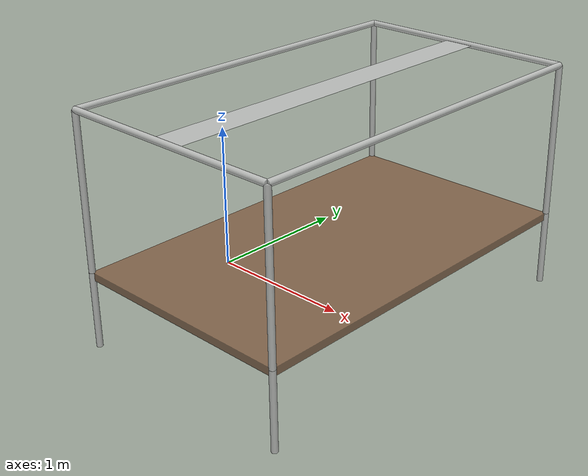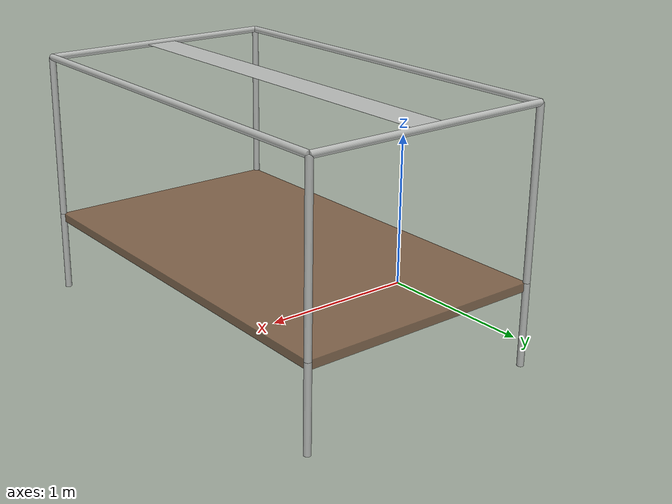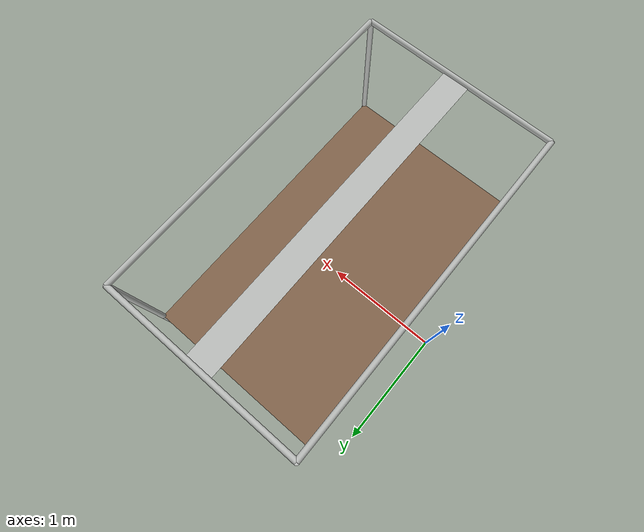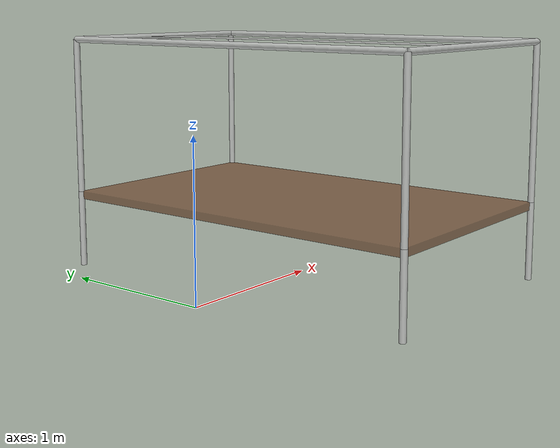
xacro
<?xml version="1.0"?>
<!-- xacro for the cage defining the workspace of the RePair platform -->

<robot name = "repair_cage" xmlns:xacro="http://ros.org/wiki/xacro">

  <xacro:include filename="$(find repair_urdf)/urdf/materials.gazebo.xacro"/>

  <xacro:property name="table_height" value="0.5" />
  <xacro:property name="cage_width" value="1.5" />
  <xacro:property name="cage_height" value="1.0"/>

  <xacro:property name="cage_depth" value="2.5" />
  <xacro:property name="leg_radius" value="0.02" />
  <xacro:property name="cage_depth" value="2.5" />
  <xacro:property name="sliding_guide_width" value="0.2" />

  <xacro:property name="table_x" value="0.98" />
  <xacro:property name="table_y" value="0.0" />
  <xacro:property name="table_z" value="0.0" />
  <xacro:property name="table_top_thickness" value="0.05"/>

  <xacro:property name="PI" value="3.14159265359" />
  <xacro:property name="PI_2" value="1.57079632679" />

  <!-- only something to avoid collisions between leg and ground plane when using Gaz. -->

  <xacro:property name="leg_z_offset_gz" value="0.0" />

  <material name="wood">
    <color rgba="0.522 0.369 0.259 0.8"/>
  </material>

  <material name="silver_gray">
    <color rgba="0.8 0.8 0.8 0.8"/>
  </material>

  <link name="world">
  </link>

  <joint name="world_joint" type="fixed" >
    <parent link="world" />
    <origin xyz="0 0 0" rpy="0 0 0" />
    <child link="table_top_link" />
  </joint>

  <link name="table_top_link">
    <visual>
      <origin xyz="${table_x} ${table_y} ${table_z+table_height-table_top_thickness/2}" />
      <geometry>
        <box size="${cage_width} ${cage_depth} ${table_top_thickness}" />
      </geometry>
      <material name="wood" />
    </visual>
    <collision>
      <origin xyz="${table_x} ${table_y} ${table_z+table_height-table_top_thickness/2}" />
      <geometry>
        <box size="${cage_width} ${cage_depth} ${table_top_thickness}" />
      </geometry>
    </collision>
  </link>

  <joint name="leg1_joint" type="fixed" >
    <parent link="table_top_link" />
    <origin xyz="${table_x+cage_width/2} ${table_y+cage_depth/2} ${table_z+table_height}" rpy="0 0 0" />
    <child link="leg1_link" />
  </joint>
  <link name="leg1_link">
    <visual>
      <origin xyz="0.0 0.0 ${-table_height/2}" rpy="0 0 0" />
      <geometry>
        <cylinder radius="${leg_radius}" length="${table_height}" />
      </geometry>
    <material name="silver_gray" />
    </visual>
    <collision>
      <origin xyz="0.0 0.0 ${-table_height/2 + leg_z_offset_gz}" rpy="0.0 0.0 0.0" />
      <geometry>
        <cylinder radius="${leg_radius}" length="${table_height}" />
      </geometry>
    </collision>
  </link>
  <joint name="vbar1_joint" type="fixed" >
    <parent link="leg1_link" />
    <origin xyz="0 0 ${cage_height/2}" rpy="0 0 0" />
    <child link="vbar1_link" />
  </joint>
  <link name="vbar1_link">
    <visual>
      <origin xyz="0.0 0.0 0" rpy="0 0 0" />
      <geometry>
        <cylinder radius="${leg_radius}" length="${cage_height}" />
      </geometry>
    <material name="silver_gray" />
    </visual>
    <collision>
      <origin xyz="0.0 0.0 0" rpy="0.0 0.0 0.0" />
      <geometry>
        <cylinder radius="${leg_radius}" length="${cage_height}" />
      </geometry>
    </collision>
  </link>

  <joint name="leg2_joint" type="fixed" >
    <parent link="table_top_link" />
    <origin xyz="${table_x-cage_width/2} ${table_y+cage_depth/2} ${table_z+table_height}" rpy="0 0 0" />
    <child link="leg2_link" />
  </joint>
  <link name="leg2_link">
    <visual>
      <origin xyz="0.0 0.0 ${-table_height/2}" rpy="0 0 0" />
      <geometry>
        <cylinder radius="${leg_radius}" length="${table_height}" />
      </geometry>
      <material name="silver_gray" />

    </visual>
    <collision>
      <origin xyz="0.0 0.0 ${-table_height/2 + leg_z_offset_gz}" rpy="0.0 0.0 0.0" />
      <geometry>
        <cylinder radius="${leg_radius}" length="${table_height}" />
      </geometry>
    </collision>
  </link>
  <joint name="vbar2_joint" type="fixed" >
    <parent link="leg2_link" />
    <origin xyz="0 0 ${cage_height/2}" rpy="0 0 0" />
    <child link="vbar2_link" />
  </joint>
  <link name="vbar2_link">
    <visual>
      <origin xyz="0.0 0.0 0" rpy="0 0 0" />
      <geometry>
        <cylinder radius="${leg_radius}" length="${cage_height}" />
      </geometry>
    <material name="silver_gray" />
    </visual>
    <collision>
      <origin xyz="0.0 0.0 0" rpy="0.0 0.0 0.0" />
      <geometry>
        <cylinder radius="${leg_radius}" length="${cage_height}" />
      </geometry>
    </collision>
  </link>

  <joint name="leg3_joint" type="fixed" >
    <parent link="table_top_link" />
    <origin xyz="${table_x+cage_width/2} ${table_y-cage_depth/2} ${table_z+table_height}" rpy="0 0 0" />
    <child link="leg3_link" />
  </joint>
  <link name="leg3_link">
    <visual>
      <origin xyz="0.0 0.0 ${-table_height/2}" rpy="0 0 0" />
      <geometry>
        <cylinder radius="${leg_radius}" length="${table_height}" />
      </geometry>
      <material name="silver_gray" />

    </visual>
    <collision>
      <origin xyz="0.0 0.0 ${-table_height/2 + leg_z_offset_gz}" rpy="0.0 0.0 0.0" />
      <geometry>
        <cylinder radius="${leg_radius}" length="${table_height}" />
      </geometry>
    </collision>
  </link>
  <joint name="vbar3_joint" type="fixed" >
    <parent link="leg3_link" />
    <origin xyz="0 0 ${cage_height/2}" rpy="0 0 0" />
    <child link="vbar3_link" />
  </joint>
  <link name="vbar3_link">
    <visual>
      <origin xyz="0.0 0.0 0" rpy="0 0 0" />
      <geometry>
        <cylinder radius="${leg_radius}" length="${cage_height}" />
      </geometry>
    <material name="silver_gray" />
    </visual>
    <collision>
      <origin xyz="0.0 0.0 0" rpy="0.0 0.0 0.0" />
      <geometry>
        <cylinder radius="${leg_radius}" length="${cage_height}" />
      </geometry>
    </collision>
  </link>

  <joint name="leg4_joint" type="fixed" >
    <parent link="table_top_link" />
    <origin xyz="${table_x-cage_width/2} ${table_y-cage_depth/2} ${table_z+table_height}" rpy="0 0 0" />
    <child link="leg4_link" />
  </joint>
  <link name="leg4_link">
    <visual>
      <origin xyz="0.0 0.0 ${-table_height/2}" rpy="0 0 0" />
      <geometry>
        <cylinder radius="${leg_radius}" length="${table_height}" />
      </geometry>
      <material name="silver_gray" />

    </visual>
    <collision>
      <origin xyz="0.0 0.0 ${-table_height/2 + leg_z_offset_gz}" rpy="0.0 0.0 0.0" />
      <geometry>
        <cylinder radius="${leg_radius}" length="${table_height}" />
      </geometry>
    </collision>
  </link>
  <joint name="vbar4_joint" type="fixed" >
    <parent link="leg4_link" />
    <origin xyz="0 0 ${cage_height/2}" rpy="0 0 0" />
    <child link="vbar4_link" />
  </joint>
  <link name="vbar4_link">
    <visual>
      <origin xyz="0.0 0.0 0" rpy="0 0 0" />
      <geometry>
        <cylinder radius="${leg_radius}" length="${cage_height}" />
      </geometry>
    <material name="silver_gray" />
    </visual>
    <collision>
      <origin xyz="0.0 0.0 0" rpy="0.0 0.0 0.0" />
      <geometry>
        <cylinder radius="${leg_radius}" length="${cage_height}" />
      </geometry>
    </collision>
  </link>

  <joint name="obar1_joint" type="fixed" >
    <parent link="vbar1_link" />
    <origin xyz="-${cage_width/2} 0 ${cage_height/2}" rpy="0 -${PI_2} 0" />
    <child link="obar1_link" />
  </joint>
  <link name="obar1_link">
    <visual>
      <origin xyz="0.0 0.0 0" rpy="0 0 0" />
      <geometry>
        <cylinder radius="${leg_radius}" length="${cage_width}" />
      </geometry>
    <material name="silver_gray" />
    </visual>
    <collision>
      <origin xyz="0.0 0.0 0" rpy="0.0 0.0 0.0" />
      <geometry>
        <cylinder radius="${leg_radius}" length="${cage_width}" />
      </geometry>
    </collision>
  </link>

  <joint name="obar2_joint" type="fixed" >
    <parent link="vbar3_link" />
    <origin xyz="-${cage_width/2} 0 ${cage_height/2}" rpy="0 -${PI_2} 0" />
    <child link="obar2_link" />
  </joint>
  <link name="obar2_link">
    <visual>
      <origin xyz="0.0 0.0 0" rpy="0 0 0" />
      <geometry>
        <cylinder radius="${leg_radius}" length="${cage_width}" />
      </geometry>
    <material name="silver_gray" />
    </visual>
    <collision>
      <origin xyz="0.0 0.0 0" rpy="0.0 0.0 0.0" />
      <geometry>
        <cylinder radius="${leg_radius}" length="${cage_width}" />
      </geometry>
    </collision>
  </link>

  <joint name="obar3_joint" type="fixed" >
    <parent link="vbar3_link" />
    <origin xyz="0 ${cage_depth/2} ${cage_height/2}" rpy="-${PI_2} 0 0" />
    <child link="obar3_link" />
  </joint>
  <link name="obar3_link">
    <visual>
      <origin xyz="0.0 0.0 0" rpy="0 0 0" />
      <geometry>
        <cylinder radius="${leg_radius}" length="${cage_depth}" />
      </geometry>
    <material name="silver_gray" />
    </visual>
    <collision>
      <origin xyz="0.0 0.0 0" rpy="0.0 0.0 0.0" />
      <geometry>
        <cylinder radius="${leg_radius}" length="${cage_depth}" />
      </geometry>
    </collision>
  </link>

  <joint name="obar4_joint" type="fixed" >
    <parent link="vbar4_link" />
    <origin xyz="0 ${cage_depth/2} ${cage_height/2}" rpy="-${PI_2} 0 0" />
    <child link="obar4_link" />
  </joint>
  <link name="obar4_link">
    <!-- dummy intertia to make Gazebo urdf2sdf converter work -->
    <visual>
      <origin xyz="0.0 0.0 0" rpy="0 0 0" />
      <geometry>
        <cylinder radius="${leg_radius}" length="${cage_depth}" />
      </geometry>
    <material name="silver_gray" />
    </visual>
    <collision>
      <origin xyz="0.0 0.0 0" rpy="0.0 0.0 0.0" />
      <geometry>
        <cylinder radius="${leg_radius}" length="${cage_depth}" />
      </geometry>
    </collision>
  </link>

  <joint name="sliding_guide_joint" type="fixed" >
    <parent link="obar2_link" />
    <origin xyz="0 ${cage_depth/2} 0" rpy="-${PI_2} 0 0" />
    <child link="sliding_guide_link" />
  </joint>
  <link name="sliding_guide_link">
    <visual>
      <origin xyz="0.0 0.0 0" rpy="0 0 0" />
      <geometry>
        <box size="0.001 ${sliding_guide_width} ${cage_depth}" />
      </geometry>
    <material name="silver_gray" />
    </visual>
    <collision>
      <origin xyz="0.0 0.0 0" rpy="0.0 0.0 0.0" />
      <geometry>
        <cylinder radius="${leg_radius}" length="${cage_depth}" />
      </geometry>
    </collision>
  </link>

  <joint name="working_surface_joint" type="fixed" >
    <parent link="sliding_guide_link" />
    <origin xyz="-${cage_height} 0 0" rpy="0.0 -${PI_2} ${PI}" />
    <child link="working_surface_link" />
  </joint>

  <link name="working_surface_link">
    <!-- Huge inertia (does not matter, is fixed to the world)-->
      <inertial>
          <mass value="1000" />
          <origin xyz="0 0 0" />
          <inertia ixx="0" ixy="0"  ixz="0"
                  iyy="0" iyz="0"
                  izz="0" />
      </inertial>

  </link>

  <xacro:repair_cage_materials />

</robot>
